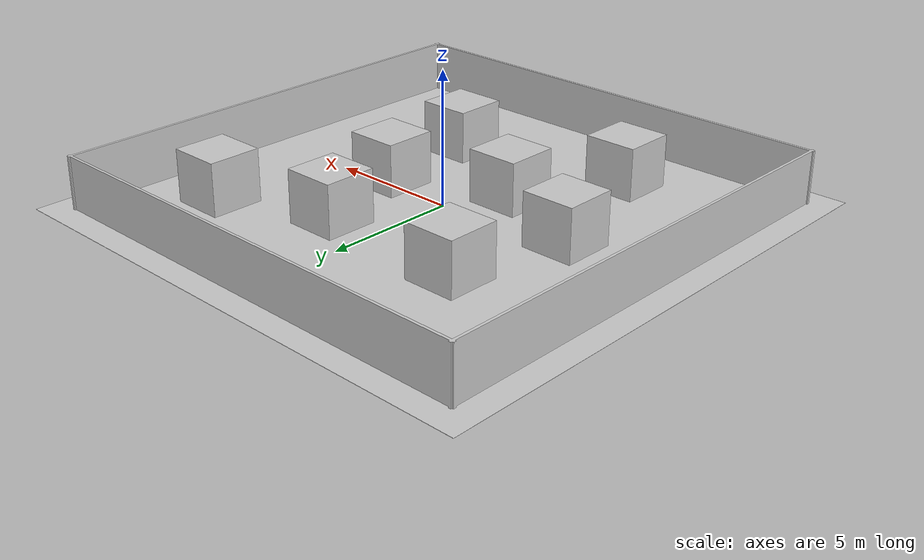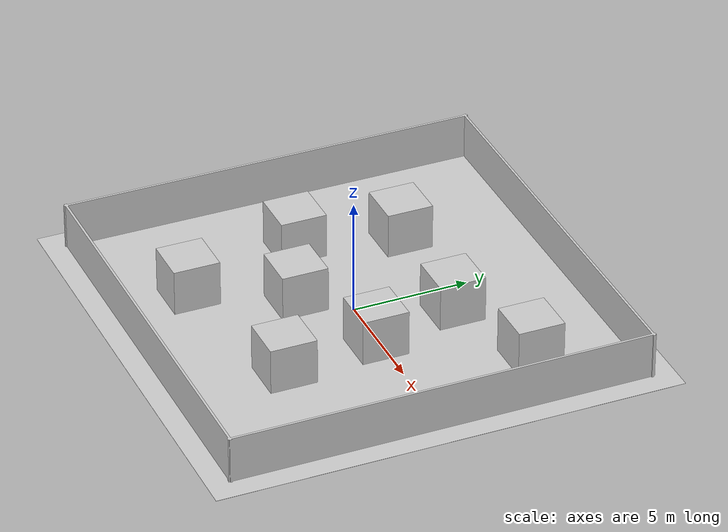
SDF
<?xml version="1.0" ?>
<sdf version="1.9">
  <world name="to_goal">

    <plugin filename="gz-sim-physics-system" name="gz::sim::systems::Physics"/>
    <plugin filename="gz-sim-user-commands-system" name="gz::sim::systems::UserCommands"/>
    <plugin filename="gz-sim-scene-broadcaster-system" name="gz::sim::systems::SceneBroadcaster"/>
    <plugin filename="gz-sim-imu-system" name="gz::sim::systems::Imu"/>
    <plugin filename="gz-sim-sensors-system" name="gz::sim::systems::Sensors">
      <render_engine>ogre2</render_engine>
    </plugin>

    <physics name="1ms" type="ignored">
      <max_step_size>0.001</max_step_size>
      <real_time_factor>1.0</real_time_factor>
    </physics>

    <light type="directional" name="sun">
      <cast_shadows>true</cast_shadows>
      <pose>0 0 10 0 0 0</pose>
      <diffuse>0.8 0.8 0.8 1</diffuse>
      <specular>0.2 0.2 0.2 1</specular>
      <attenuation>
        <range>1000</range>
        <constant>0.9</constant>
        <linear>0.01</linear>
        <quadratic>0.001</quadratic>
      </attenuation>
      <direction>-0.5 0.1 -0.9</direction>
    </light>

    <include>
      <uri>model://obstacle2x2/house</uri>
      <pose>0 0 0 0 0 0</pose>
    </include>

    <include>
      <uri>model://obstacle2x2/floor</uri>
      <pose>0 0 0 0 0 0</pose>
    </include>

  </world>
</sdf>

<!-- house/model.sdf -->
<sdf version="1.9">
  <model name="house">
    <static>true</static>
    <link name="link">

      <collision name="collision">
        <geometry>
          <mesh>
            <uri>model://obstacle2x2/house/meshes/mesh.dae</uri>
            <scale>1 1 1</scale>
          </mesh>
        </geometry>
      </collision>

      <visual name="visual">
        <geometry>
          <mesh>
            <uri>model://obstacle2x2/house/meshes/mesh.dae</uri>
          </mesh>
        </geometry>
      </visual>

    </link>
  </model>
</sdf>

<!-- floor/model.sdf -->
<sdf version="1.9">
  <model name="floor">
    <static>true</static>
    <link name="link">

      <collision name="collision">
        <geometry>
          <mesh>
            <uri>model://obstacle2x2/floor/meshes/mesh.dae</uri>
            <scale>1 1 1</scale>
          </mesh>
        </geometry>
      </collision>

      <visual name="visual">
        <geometry>
          <mesh>
            <uri>model://obstacle2x2/floor/meshes/mesh.dae</uri>
          </mesh>
        </geometry>
      </visual>

    </link>
  </model>
</sdf>
